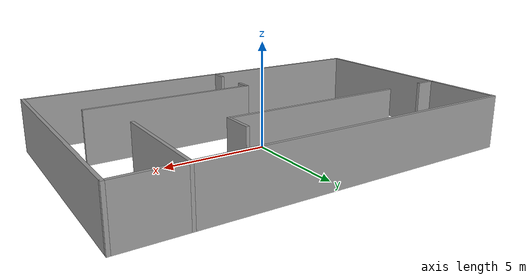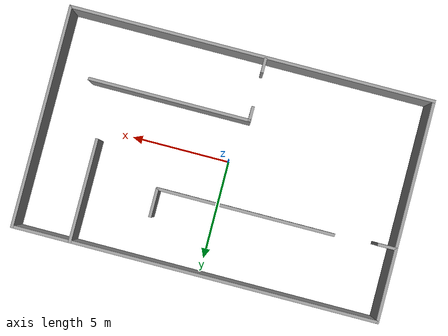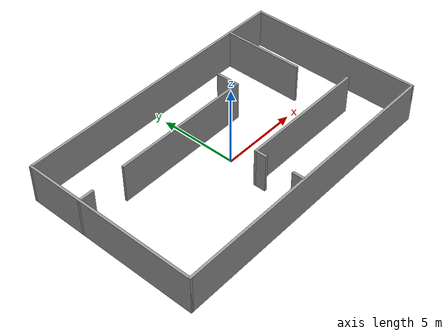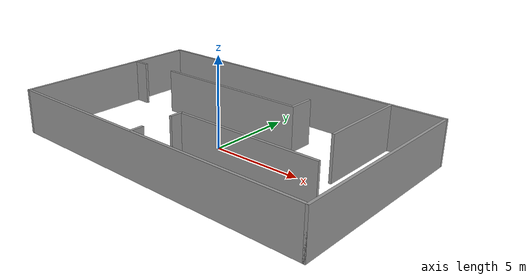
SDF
<?xml version='1.0'?>
<sdf version='1.7'>
  <model name='test'>
    <pose>0.212787 0.206436 0 0 -0 0</pose>
    <link name='Wall_11'>
      <collision name='Wall_11_Collision'>
        <geometry>
          <box>
            <size>1 0.15 2.5</size>
          </box>
        </geometry>
        <pose>0 0 1.25 0 -0 0</pose>
      </collision>
      <visual name='Wall_11_Visual'>
        <pose>0 0 1.25 0 -0 0</pose>
        <geometry>
          <box>
            <size>1 0.15 2.5</size>
          </box>
        </geometry>
        <material>
          <script>
            <uri>file://media/materials/scripts/gazebo.material</uri>
            <name>Gazebo/Grey</name>
          </script>
          <ambient>1 1 1 1</ambient>
        </material>
        <meta>
          <layer>0</layer>
        </meta>
      </visual>
      <pose>-8.75 1.89141 0 0 -0 0</pose>
    </link>
    <link name='Wall_13'>
      <collision name='Wall_13_Collision'>
        <geometry>
          <box>
            <size>9 0.15 2.5</size>
          </box>
        </geometry>
        <pose>0 0 1.25 0 -0 0</pose>
      </collision>
      <visual name='Wall_13_Visual'>
        <pose>0 0 1.25 0 -0 0</pose>
        <geometry>
          <box>
            <size>9 0.15 2.5</size>
          </box>
        </geometry>
        <material>
          <script>
            <uri>file://media/materials/scripts/gazebo.material</uri>
            <name>Gazebo/Grey</name>
          </script>
          <ambient>1 1 1 1</ambient>
        </material>
        <meta>
          <layer>0</layer>
        </meta>
      </visual>
      <pose>-1.61909 1.99694 0 0 -0 0</pose>
    </link>
    <link name='Wall_14'>
      <collision name='Wall_14_Collision'>
        <geometry>
          <box>
            <size>1.5 0.15 2.5</size>
          </box>
        </geometry>
        <pose>0 0 1.25 0 -0 0</pose>
      </collision>
      <visual name='Wall_14_Visual'>
        <pose>0 0 1.25 0 -0 0</pose>
        <geometry>
          <box>
            <size>1.5 0.15 2.5</size>
          </box>
        </geometry>
        <material>
          <script>
            <uri>file://media/materials/scripts/gazebo.material</uri>
            <name>Gazebo/Grey</name>
          </script>
          <ambient>1 1 1 1</ambient>
        </material>
        <meta>
          <layer>0</layer>
        </meta>
      </visual>
      <pose>2.80591 2.67195 0 0 -0 1.5708</pose>
    </link>
    <link name='Wall_17'>
      <collision name='Wall_17_Collision'>
        <geometry>
          <box>
            <size>0.75 0.15 2.5</size>
          </box>
        </geometry>
        <pose>0 0 1.25 0 -0 0</pose>
      </collision>
      <visual name='Wall_17_Visual'>
        <pose>0 0 1.25 0 -0 0</pose>
        <geometry>
          <box>
            <size>0.75 0.15 2.5</size>
          </box>
        </geometry>
        <material>
          <script>
            <uri>file://media/materials/scripts/gazebo.material</uri>
            <name>Gazebo/Grey</name>
          </script>
          <ambient>1 1 1 1</ambient>
        </material>
        <meta>
          <layer>0</layer>
        </meta>
      </visual>
      <pose>-0.696918 -5.16095 0 0 -0 1.5708</pose>
    </link>
    <link name='Wall_20'>
      <collision name='Wall_20_Collision'>
        <geometry>
          <box>
            <size>0.75 0.15 2.5</size>
          </box>
        </geometry>
        <pose>0 0 1.25 0 -0 0</pose>
      </collision>
      <visual name='Wall_20_Visual'>
        <pose>0 0 1.25 0 -0 0</pose>
        <geometry>
          <box>
            <size>0.75 0.15 2.5</size>
          </box>
        </geometry>
        <material>
          <script>
            <uri>file://media/materials/scripts/gazebo.material</uri>
            <name>Gazebo/Grey</name>
          </script>
          <ambient>1 1 1 1</ambient>
        </material>
        <meta>
          <layer>0</layer>
        </meta>
      </visual>
      <pose>-0.696918 -2.69844 0 0 -0 1.5708</pose>
    </link>
    <link name='Wall_21'>
      <collision name='Wall_21_Collision'>
        <geometry>
          <box>
            <size>8.2149 0.15 2.5</size>
          </box>
        </geometry>
        <pose>0 0 1.25 0 -0 0</pose>
      </collision>
      <visual name='Wall_21_Visual'>
        <pose>0 0 1.25 0 -0 0</pose>
        <geometry>
          <box>
            <size>8.2149 0.15 2.5</size>
          </box>
        </geometry>
        <material>
          <script>
            <uri>file://media/materials/scripts/gazebo.material</uri>
            <name>Gazebo/Grey</name>
          </script>
          <ambient>1 1 1 1</ambient>
        </material>
        <meta>
          <layer>0</layer>
        </meta>
      </visual>
      <pose>3.33549 -2.36326 0 0 -0 0</pose>
    </link>
    <link name='Wall_23'>
      <collision name='Wall_23_Collision'>
        <geometry>
          <box>
            <size>5.25 0.15 2.5</size>
          </box>
        </geometry>
        <pose>0 0 1.25 0 -0 0</pose>
      </collision>
      <visual name='Wall_23_Visual'>
        <pose>0 0 1.25 0 -0 0</pose>
        <geometry>
          <box>
            <size>5.25 0.15 2.5</size>
          </box>
        </geometry>
        <material>
          <script>
            <uri>file://media/materials/scripts/gazebo.material</uri>
            <name>Gazebo/Grey</name>
          </script>
          <ambient>1 1 1 1</ambient>
        </material>
        <meta>
          <layer>0</layer>
        </meta>
      </visual>
      <pose>6.26848 3 0 0 -0 -1.5708</pose>
    </link>
    <link name='Wall_5'>
      <collision name='Wall_5_Collision'>
        <geometry>
          <box>
            <size>11.25 0.15 2.5</size>
          </box>
        </geometry>
        <pose>0 0 1.25 0 -0 0</pose>
      </collision>
      <visual name='Wall_5_Visual'>
        <pose>0 0 1.25 0 -0 0</pose>
        <geometry>
          <box>
            <size>11.25 0.15 2.5</size>
          </box>
        </geometry>
        <material>
          <script>
            <uri>file://media/materials/scripts/gazebo.material</uri>
            <name>Gazebo/Grey</name>
          </script>
          <ambient>1 1 1 1</ambient>
        </material>
        <meta>
          <layer>0</layer>
        </meta>
      </visual>
      <pose>-9.175 0 0 0 -0 -1.5708</pose>
    </link>
    <link name='Wall_6'>
      <collision name='Wall_6_Collision'>
        <geometry>
          <box>
            <size>18.5 0.15 2.5</size>
          </box>
        </geometry>
        <pose>0 0 1.25 0 -0 0</pose>
      </collision>
      <visual name='Wall_6_Visual'>
        <pose>0 0 1.25 0 -0 0</pose>
        <geometry>
          <box>
            <size>18.5 0.15 2.5</size>
          </box>
        </geometry>
        <material>
          <script>
            <uri>file://media/materials/scripts/gazebo.material</uri>
            <name>Gazebo/Grey</name>
          </script>
          <ambient>1 1 1 1</ambient>
        </material>
        <meta>
          <layer>0</layer>
        </meta>
      </visual>
      <pose>0 -5.55 0 0 -0 0</pose>
    </link>
    <link name='Wall_7'>
      <collision name='Wall_7_Collision'>
        <geometry>
          <box>
            <size>11.25 0.15 2.5</size>
          </box>
        </geometry>
        <pose>0 0 1.25 0 -0 0</pose>
      </collision>
      <visual name='Wall_7_Visual'>
        <pose>0 0 1.25 0 -0 0</pose>
        <geometry>
          <box>
            <size>11.25 0.15 2.5</size>
          </box>
        </geometry>
        <material>
          <script>
            <uri>file://media/materials/scripts/gazebo.material</uri>
            <name>Gazebo/Grey</name>
          </script>
          <ambient>1 1 1 1</ambient>
        </material>
        <meta>
          <layer>0</layer>
        </meta>
      </visual>
      <pose>9.175 0 0 0 -0 1.5708</pose>
    </link>
    <link name='Wall_8'>
      <collision name='Wall_8_Collision'>
        <geometry>
          <box>
            <size>18.5 0.15 2.5</size>
          </box>
        </geometry>
        <pose>0 0 1.25 0 -0 0</pose>
      </collision>
      <visual name='Wall_8_Visual'>
        <pose>0 0 1.25 0 -0 0</pose>
        <geometry>
          <box>
            <size>18.5 0.15 2.5</size>
          </box>
        </geometry>
        <material>
          <script>
            <uri>file://media/materials/scripts/gazebo.material</uri>
            <name>Gazebo/Grey</name>
          </script>
          <ambient>1 1 1 1</ambient>
        </material>
        <meta>
          <layer>0</layer>
        </meta>
      </visual>
      <pose>0 5.55 0 0 -0 3.14159</pose>
    </link>
    <static>1</static>
  </model>
</sdf>
